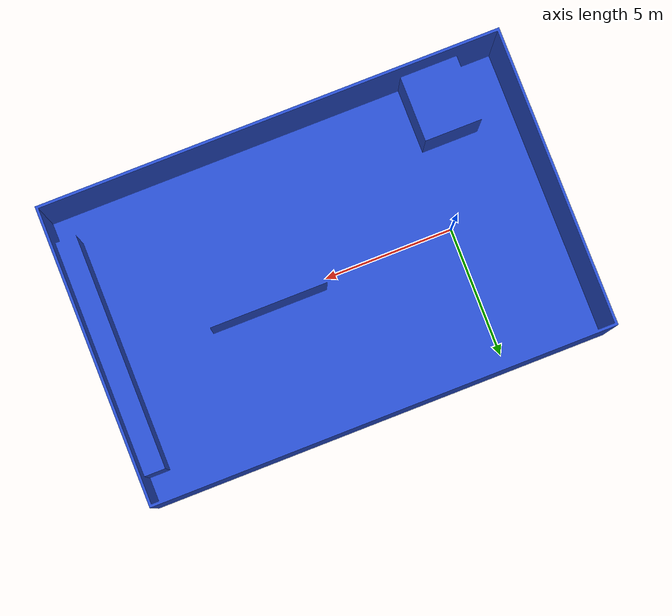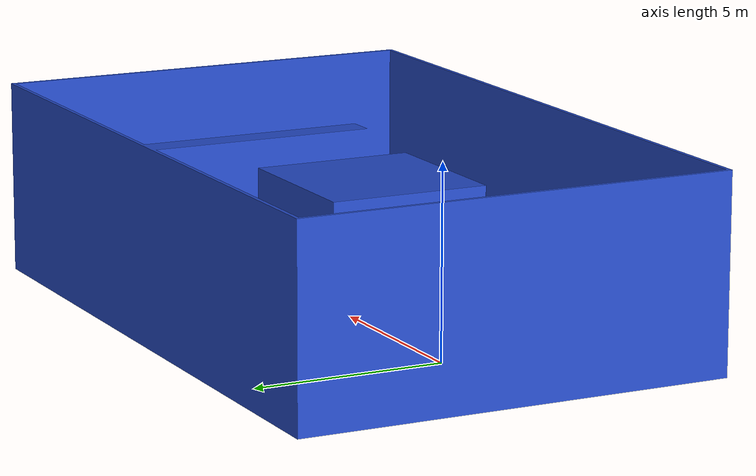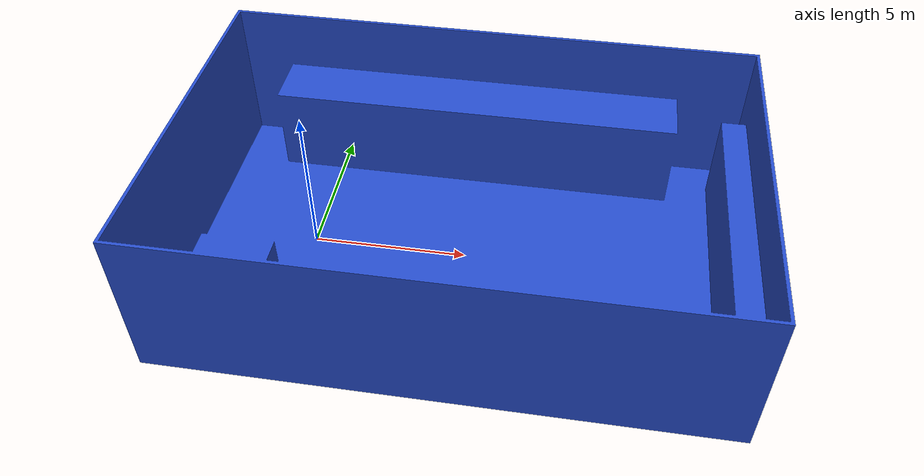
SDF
<?xml version="1.0"?>
<sdf version="1.7">
  <model name="field_dae">
    <static>true</static>
    <pose>5 0 0 0 0 0</pose>

    <link name="link">
      <!-- Visual -->
      <visual name="visual">
        <geometry>
          <mesh>
            <uri>file:///home/iskhas/hunter_ws/src/ugv_sim/hunter_se/hunter_se_gazebo/meshes/dae/field.dae</uri>
            <scale>1.0 1.0 1.0</scale>
          </mesh>
        </geometry>
        <material>
          <script>
            <name>Gazebo/Blue</name>
            <uri>file://media/materials/scripts/gazebo.material</uri>
          </script>
          <ambient>0.2 0.2 0.8 1.0</ambient>
          <diffuse>0.4 0.4 0.9 1.0</diffuse>
          <specular>0.1 0.1 0.1 1.0</specular>
        </material>
      </visual>

      <!-- Collision -->
      <collision name="collision">
        <geometry>
          <mesh>
            <uri>file:///home/iskhas/hunter_ws/src/ugv_sim/hunter_se/hunter_se_gazebo/meshes/dae/field.dae</uri>
            <scale>1.0 1.0 1.0</scale>
          </mesh>
        </geometry>
        <surface>
          <friction>
            <ode>
              <mu>1.0</mu>
              <mu2>1.0</mu2>
            </ode>
          </friction>
        </surface>
      </collision>

      <!-- Inertial -->
      <inertial>
        <mass>1.0</mass>
        <inertia>
          <ixx>1.0</ixx>
          <ixy>0.0</ixy>
          <ixz>0.0</ixz>
          <iyy>1.0</iyy>
          <iyz>0.0</iyz>
          <izz>1.0</izz>
        </inertia>
      </inertial>
    </link>
  </model>
</sdf>
